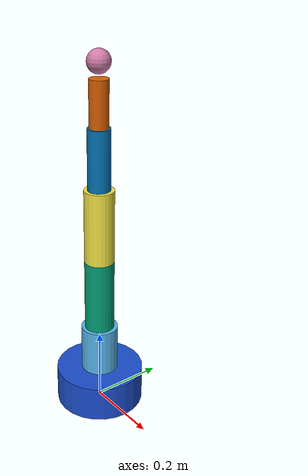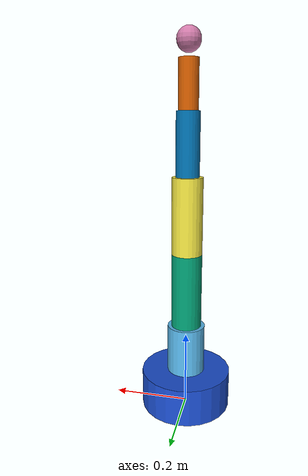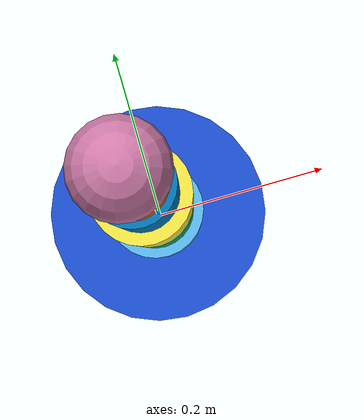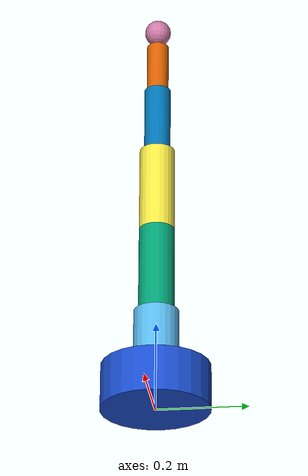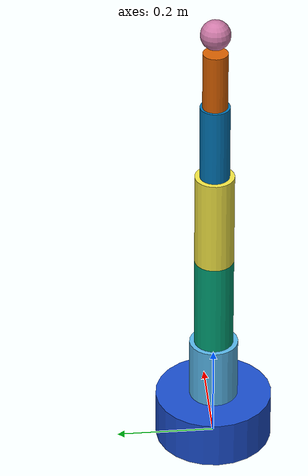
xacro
<?xml version="1.0"?>
<robot name="niryo_ned" xmlns:xacro="http://www.ros.org/wiki/xacro">
  <xacro:property name="pi" value="3.14159265359"/>

  <!-- Base -->
  <link name="base_link">
    <visual>
      <origin xyz="0 0 0.05" rpy="0 0 0"/>
      <geometry>
        <cylinder length="0.1" radius="0.12"/>
      </geometry>
      <material name="blue">
        <color rgba="0.1 0.3 0.8 1.0"/>
      </material>
    </visual>
    <collision>
      <origin xyz="0 0 0.05" rpy="0 0 0"/>
      <geometry>
        <cylinder length="0.1" radius="0.12"/>
      </geometry>
    </collision>
  </link>

  <!-- Link 1 -->
  <link name="link_1">
    <visual>
      <origin xyz="0 0 0.07" rpy="0 0 0"/>
      <geometry>
        <cylinder length="0.14" radius="0.05"/>
      </geometry>
    </visual>
    <collision>
      <origin xyz="0 0 0.07" rpy="0 0 0"/>
      <geometry>
        <cylinder length="0.14" radius="0.05"/>
      </geometry>
    </collision>
  </link>
  <joint name="joint_1" type="revolute">
    <parent link="base_link"/>
    <child link="link_1"/>
    <origin xyz="0 0 0.09" rpy="0 0 0"/>
    <axis xyz="0 0 1"/>
    <limit lower="-3.14" upper="3.14" effort="50" velocity="1.0"/>
  </joint>

  <!-- Link 2 -->
  <link name="link_2">
    <visual>
      <origin xyz="0 0 0.10" rpy="0 0 0"/>
      <geometry>
        <cylinder length="0.20" radius="0.04"/>
      </geometry>
    </visual>
    <collision>
      <origin xyz="0 0 0.10" rpy="0 0 0"/>
      <geometry>
        <cylinder length="0.20" radius="0.04"/>
      </geometry>
    </collision>
  </link>
  <joint name="joint_2" type="revolute">
    <parent link="link_1"/>
    <child link="link_2"/>
    <origin xyz="0 0 0.14" rpy="0 0 0"/>
    <axis xyz="0 1 0"/>
    <limit lower="-3.14" upper="3.14" effort="50" velocity="1.0"/>
  </joint>

  <!-- Link 3 -->
  <link name="link_3">
    <visual>
      <origin xyz="0 0 0.10" rpy="0 0 0"/>
      <geometry>
        <cylinder length="0.20" radius="0.04"/>
      </geometry>
    </visual>
    <collision>
      <origin xyz="0 0 0.10" rpy="0 0 0"/>
      <geometry>
        <cylinder length="0.20" radius="0.04"/>
      </geometry>
    </collision>
  </link>
  <joint name="joint_3" type="revolute">
    <parent link="link_2"/>
    <child link="link_3"/>
    <origin xyz="0 0 0.20" rpy="0 0 0"/>
    <axis xyz="0 1 0"/>
    <limit lower="-3.14" upper="3.14" effort="50" velocity="1.0"/>
  </joint>

  <!-- Link 4 -->
  <link name="link_4">
    <visual>
      <origin xyz="0 0 0.08" rpy="0 0 0"/>
      <geometry>
        <cylinder length="0.16" radius="0.03"/>
      </geometry>
    </visual>
    <collision>
      <origin xyz="0 0 0.08" rpy="0 0 0"/>
      <geometry>
        <cylinder length="0.16" radius="0.03"/>
      </geometry>
    </collision>
  </link>
  <joint name="joint_4" type="revolute">
    <parent link="link_3"/>
    <child link="link_4"/>
    <origin xyz="0 0 0.20" rpy="0 0 0"/>
    <axis xyz="0 1 0"/>
    <limit lower="-3.14" upper="3.14" effort="50" velocity="1.0"/>
  </joint>

  <!-- Link 5 -->
  <link name="link_5">
    <visual>
      <origin xyz="0 0 0.06" rpy="0 0 0"/>
      <geometry>
        <cylinder length="0.12" radius="0.025"/>
      </geometry>
    </visual>
    <collision>
      <origin xyz="0 0 0.06" rpy="0 0 0"/>
      <geometry>
        <cylinder length="0.12" radius="0.025"/>
      </geometry>
    </collision>
  </link>
  <joint name="joint_5" type="revolute">
    <parent link="link_4"/>
    <child link="link_5"/>
    <origin xyz="0 0 0.16" rpy="0 0 0"/>
    <axis xyz="0 1 0"/>
    <limit lower="-3.14" upper="3.14" effort="50" velocity="1.0"/>
  </joint>

  <!-- Link 6 (end effector) -->
  <link name="link_6">
    <visual>
      <origin xyz="0 0 0.04" rpy="0 0 0"/>
      <geometry>
        <sphere radius="0.03"/>
      </geometry>
    </visual>
    <collision>
      <origin xyz="0 0 0.04" rpy="0 0 0"/>
      <geometry>
        <sphere radius="0.03"/>
      </geometry>
    </collision>
  </link>
  <joint name="joint_6" type="revolute">
    <parent link="link_5"/>
    <child link="link_6"/>
    <origin xyz="0 0 0.12" rpy="0 0 0"/>
    <axis xyz="0 1 0"/>
    <limit lower="-3.14" upper="3.14" effort="50" velocity="1.0"/>
  </joint>

</robot>
